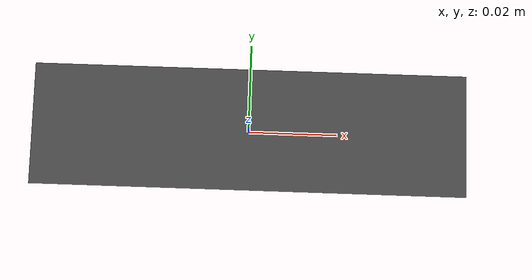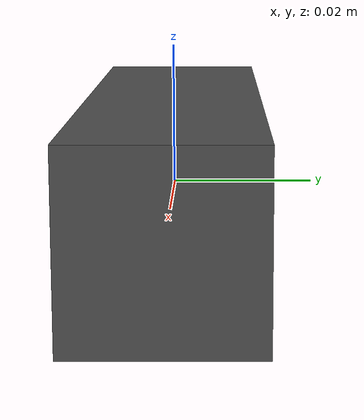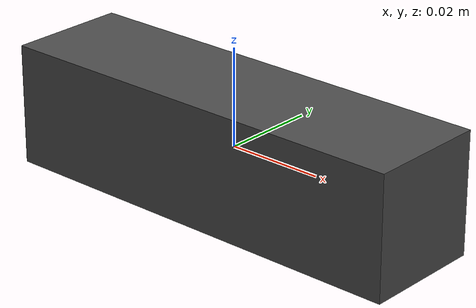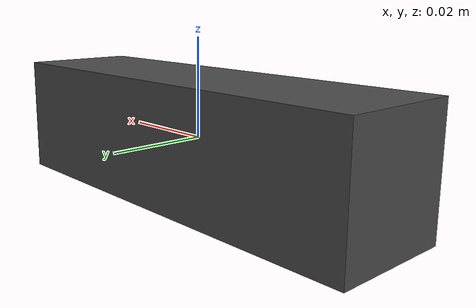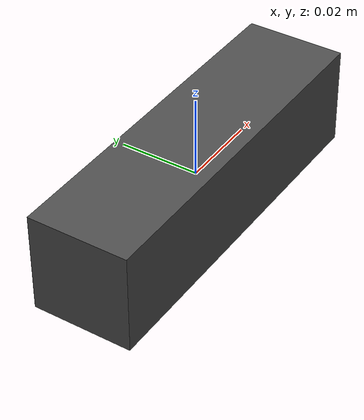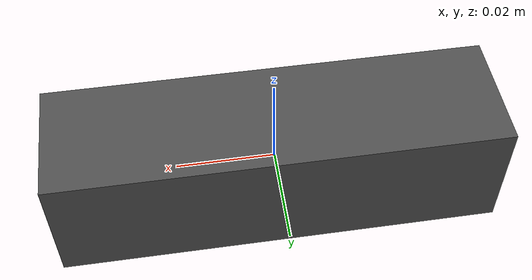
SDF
<?xml version="1.0"?>
<sdf version="1.9">
  <model name="rgbd_depth_sensor">
    <static>false</static>

    <link name="rgbd_base_link">
      <inertial>
        <mass>0.1</mass>
        <inertia>
          <ixx>0.001</ixx><iyy>0.001</iyy><izz>0.001</izz>
        </inertia>
      </inertial>
      <visual name="camera_body">
        <geometry>
          <box><size>0.09 0.025 0.025</size></box>
        </geometry>
        <material>
          <ambient>0.3 0.3 0.3 1</ambient>
        </material>
      </visual>
    </link>

    <!-- RGBD Camera Link -->
    <link name="rgbd_camera_link">
      <pose relative_to="rgbd_base_link">0.02 0 0 0 0 0</pose>
      <inertial>
        <mass>0.01</mass>
        <inertia>
          <ixx>0.0001</ixx><iyy>0.0001</iyy><izz>0.0001</izz>
        </inertia>
      </inertial>

      <sensor name="rgbd_camera" type="rgbd_camera">
        <always_on>1</always_on>
        <update_rate>30</update_rate>
        <visualize>true</visualize>

        <!-- RGB Image Topic -->
        <topic>rgbd/image</topic>
        <gz_frame_id>rgbd_camera_link</gz_frame_id>

        <camera name="rgbd_front">
          <!-- 86 degrees horizontal FOV (D435 spec) -->
          <horizontal_fov>1.5009</horizontal_fov>

          <!-- Camera intrinsics for 640x360 -->
          <lens>
            <intrinsics>
              <fx>343.159</fx>
              <fy>343.159</fy>
              <cx>319.5</cx>
              <cy>179.5</cy>
              <s>0</s>
            </intrinsics>
          </lens>

          <!-- No distortion (rectified output) -->
          <distortion>
            <k1>0.0</k1>
            <k2>0.0</k2>
            <k3>0.0</k3>
            <p1>0.0</p1>
            <p2>0.0</p2>
            <center>0.5 0.5</center>
          </distortion>

          <!-- RGB Image Configuration -->
          <image>
            <width>640</width>
            <height>360</height>
            <format>R8G8B8</format>
          </image>

          <!-- RGB Far Clip (visual range) -->
          <clip>
            <near>0.01</near>
            <far>300</far>
          </clip>

          <!-- Depth Camera Configuration -->
          <depth_camera>
            <!-- Depth range for occupancy -->
            <clip>
              <near>0.1</near>   <!-- OccWorld expects >10cm -->
              <far>10.0</far>   <!-- 10m practical depth limit -->
            </clip>
            <!-- Output depth image dimensions (same as RGB) -->
            <output>depths</output>
          </depth_camera>

          <!-- Image noise (affects RGB) -->
          <noise>
            <type>gaussian</type>
            <mean>0</mean>
            <stddev>0.007</stddev>
          </noise>
        </camera>
      </sensor>
    </link>

    <joint name="rgbd_camera_joint" type="fixed">
      <parent>rgbd_base_link</parent>
      <child>rgbd_camera_link</child>
    </joint>

  </model>
</sdf>
